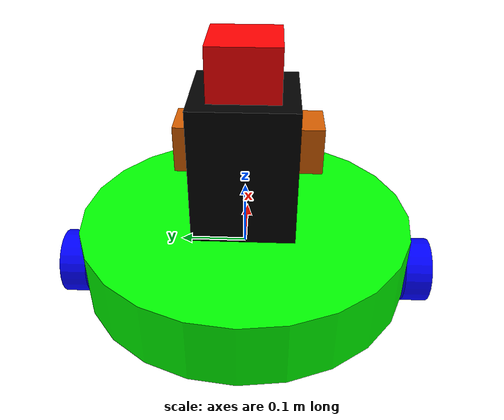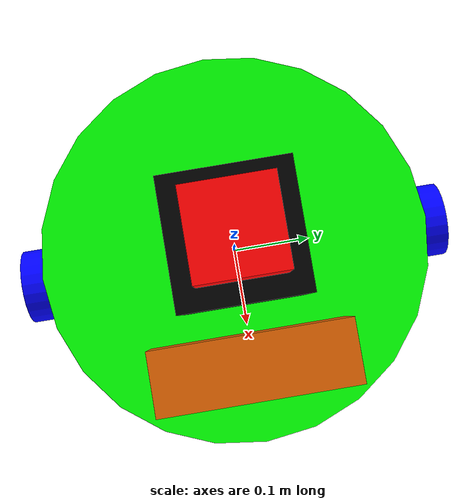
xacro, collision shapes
<?xml version='1.0'?>

<robot name="panos_bot" xmlns:xacro="http://www.ros.org/wiki/xacro">
  <xacro:include filename="$(find slam_project)/urdf/common_properties.xacro"/>
  <xacro:include filename="$(find slam_project)/urdf/panos_bot.gazebo" />
  <link name="robot_footprint"></link>

  <joint name="robot_footprint_joint" type="fixed">
    <origin xyz="0 0 0" rpy="0 0 0" />
    <parent link="robot_footprint"/>
    <child link="chassis" />
  </joint>

  <link name='chassis'>
    <pose>0 0 0.1 0 0 0</pose>

    <inertial>
      <mass value="15.0"/>
      <origin xyz="0.0 0 0" rpy=" 0 0 0"/>
      <inertia
          ixx="0.1" ixy="0" ixz="0"
          iyy="0.1" iyz="0"
          izz="0.1"
      />
    </inertial>

    <collision name='collision'>
      <origin xyz="0 0 0" rpy=" 0 0 0"/>
      <geometry>
        <cylinder radius="0.25" length="0.1"/>
      </geometry>
    </collision>

    <visual name='chassis_visual'>
      <origin xyz="0 0 0" rpy=" 0 0 0"/>
      <geometry>
        <cylinder radius="0.25" length="0.1"/>
      </geometry>
      <material name="green">
        <color rgba="0 1 0 1"/>
      </material>
    </visual>
    <collision name='back_caster_collision'>
      <origin xyz="-0.18 0 -0.05" rpy=" 0 0 0"/>
      <geometry>
        <sphere radius="0.0499"/>
      </geometry>
    </collision>

    <visual name='back_caster_visual'>
      <origin xyz="-0.18 0 -0.05" rpy=" 0 0 0"/>
      <geometry>
        <sphere radius="0.05"/>
      </geometry>
    </visual>

    <collision name='front_caster_collision'>
      <origin xyz="0.18 0 -0.05" rpy=" 0 0 0"/>
      <geometry>
        <sphere radius="0.0499"/>
      </geometry>
    </collision>

    <visual name='front_caster_visual'>
      <origin xyz="0.18 0 -0.05" rpy=" 0 0 0"/>
      <geometry>
        <sphere radius="0.05"/>
      </geometry>
    </visual>
  </link>

  <!-- sensor base -->
  <link name='sensor_base'>
    <pose>0 0 0 0 0 0</pose>

    <inertial>
      <mass value="1.0"/>
      <origin xyz="0 0 0.125" rpy=" 0 0 0"/>
      <inertia
          ixx="0.1" ixy="0" ixz="0"
          iyy="0.1" iyz="0"
          izz="0.1"
      />
    </inertial>

    <collision name='sensor_base_collision'>
      <origin xyz="0 0 0.125" rpy=" 0 0 0"/>
      <geometry>
        <box size=".15 .15 .25"/>
      </geometry>
    </collision>

    <visual name='sensor_base_visual'>
      <origin xyz="0 0 0.125" rpy=" 0 0 0"/>
      <geometry>
        <box size=".15 .15 .25"/>
      </geometry>
      <material name="black">
        <color rgba="0 0 0 1"/>
      </material>
    </visual>
  </link>

  <!-- Left Wheel Link -->

  <link name="left_wheel">

    <inertial>
      <mass value="2.0"/>
      <origin xyz="0 0 0" rpy="0 ${M_PI/2} ${M_PI/2}"/>
      <inertia
          ixx="0.1" ixy="0" ixz="0"
          iyy="0.1" iyz="0"
          izz="0.1"
      />
    </inertial>
    <visual>
      <geometry>
        <cylinder length="0.04" radius="0.05"/>
      </geometry>
      <origin xyz="0 0 0" rpy="0 ${M_PI/2} ${M_PI/2}"/>
      <material name="blue">
        <color rgba="0 0 1 1"/>
      </material>
    </visual>
    <collision>
      <geometry>
        <cylinder length="0.04" radius="0.05"/>
      </geometry>
      <origin xyz="0 0 0" rpy="0 ${M_PI/2} ${M_PI/2}"/>
    </collision>
  </link>

  <!-- Right Wheel Link -->

  <link name="right_wheel">

    <inertial>
      <mass value="2.0"/>
      <origin xyz="0 0 0" rpy="0 ${M_PI/2} ${M_PI/2}"/>
      <inertia
          ixx="0.1" ixy="0" ixz="0"
          iyy="0.1" iyz="0"
          izz="0.1"
      />
    </inertial>
    <visual>
      <geometry>
        <cylinder length="0.04" radius="0.05"/>
      </geometry>
      <origin xyz="0 0 0" rpy="0 ${M_PI/2} ${M_PI/2}"/>
      <material name="blue">
        <color rgba="0 0 1 1"/>
      </material>
    </visual>
    <collision>
      <geometry>
        <cylinder length="0.04" radius="0.05"/>
      </geometry>
      <origin xyz="0 0 0" rpy="0 ${M_PI/2} ${M_PI/2}"/>
    </collision>
  </link>

  <!-- Camera Link x -->

  <link name="RGBD_camera">

    <inertial>
      <mass value="0.1"/>
      <origin xyz="0 0 0" rpy="0 0 0"/>
      <inertia
          ixx="1e-6" ixy="0" ixz="0"
          iyy="1e-6" iyz="0"
          izz="1e-6"
      />
    </inertial>
    <visual>
      <geometry>
        <mesh filename="package://slam_project/meshes/kinect.dae"/>
      </geometry>
      <origin xyz="0 0 0" rpy="0 0 0"/>

    </visual>
    <collision>
      <geometry>
        <box size="0.08 0.25 0.08"/>
      </geometry>
      <origin xyz="0 0 0" rpy="0 0 0"/>
    </collision>
  </link>
  <!-- Depth sensor link - used to rotate the depth sensor -->
  <link name="Depth_sensor"></link>

  <!-- Hokuyo Link -->

  <link name="hokuyo">

    <inertial>
      <mass value="0.1"/>
      <origin xyz="0 0 0" rpy="0 0 0"/>
      <inertia
          ixx="1e-6" ixy="0" ixz="0"
          iyy="1e-6" iyz="0"
          izz="1e-6"
      />
    </inertial>
    <visual>
      <geometry>
        <mesh filename="package://slam_project/meshes/hokuyo.dae"/>
      </geometry>
      <origin xyz="0 0 0" rpy="0 0 0"/>
      <material name="red">
        <color rgba="1 0 0 1"/>
      </material>
    </visual>
    <collision>
      <geometry>
        <box size="0.1 0.1 0.1"/>
      </geometry>
      <origin xyz="0 0 0" rpy="0 0 0"/>
    </collision>
  </link>

  <!-- Joints -->

  <joint type="continuous" name="left_wheel_hinge">
    <origin xyz="0 0.27 -0.05" rpy="0 0 0"/>
    <child link="left_wheel"/>
    <parent link="chassis"/>
    <axis xyz="0 1 0" rpy="0 0 0"/>
    <limit effort="10000" velocity="1000"/>
    <joint_properties damping="1.0" friction="1.0"/>
  </joint>

  <joint type="continuous" name="right_wheel_hinge">
    <origin xyz="0 -0.27 -0.05" rpy="0 0 0"/>
    <child link="right_wheel"/>
    <parent link="chassis"/>
    <axis xyz="0 1 0" rpy="0 0 0"/>
    <limit effort="10000" velocity="1000"/>
    <joint_properties damping="1.0" friction="1.0"/>
  </joint>

  <joint type="fixed" name="camera_joint">
    <origin xyz="0.15 0 0.1" rpy="0 0 0"/>
    <child link="RGBD_camera"/>
    <parent link="chassis"/>
  </joint>

  <joint type="fixed" name="Depth_sensor_joint">
      <origin xyz="0.15 0 0.1" rpy="${-M_PI/2} 0 ${-M_PI/2}"/>
      <child link="Depth_sensor"/>
      <parent link="RGBD_camera"/>
      <axis xyz="1 0 0" rpy="0 0 0"/>
  </joint>

  <joint type="fixed" name="hokuyo_joint">
    <origin xyz="0 0 0.275" rpy="0 0 0"/>
    <child link="hokuyo"/>
    <parent link="sensor_base"/>
  </joint>

  <joint type="fixed" name="sensor_base_joint">
    <origin xyz="0 0 0" rpy="0 0 0"/>
    <child link="sensor_base"/>
    <parent link="chassis"/>
  </joint>

</robot>

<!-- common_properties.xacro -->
<robot name="robot" xmlns:xacro="http://www.ros.org/wiki/xacro">

  <xacro:property name="M_PI" value="3.141592653" />

</robot>
